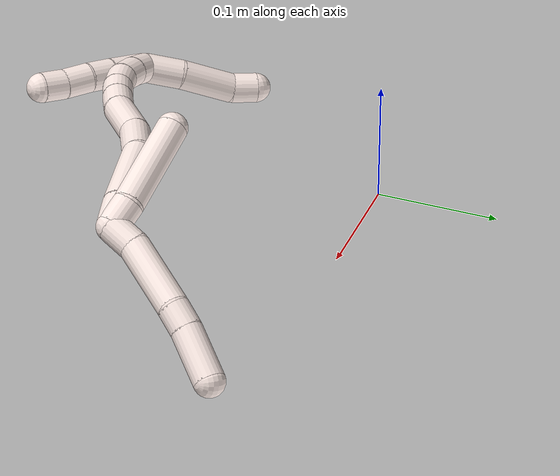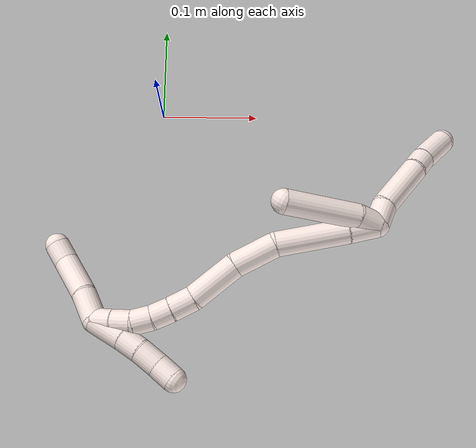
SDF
<sdf version="1.7">
 <world name="default">
  <model name="11">
   <static>0</static>
   <link name="11">
    <collision name="collision-cylinder-e_1_2_8">
     <pose>0.011655 0.002142 0.003449 -0.555804 1.23556 -0.400005</pose>
     <geometry><cylinder><radius>0.0125</radius><length>0.024684</length></cylinder></geometry>
     <surface>
      <friction><ode><mu>1.16</mu><mu2>1.16</mu2><slip1>0</slip1><slip2>0</slip2></ode></friction>
      <contact><ode><kp>1e+06</kp><kd>1</kd><max_vel>0</max_vel><min_depth>0.001</min_depth></ode></contact>
     </surface>
    </collision>
    <visual name="visual-cylinder-e_1_2_8">
     <pose>0.011655 0.002142 0.003449 -0.555804 1.23556 -0.400005</pose>
     <geometry><cylinder><radius>0.0125</radius><length>0.024684</length></cylinder></geometry>
     <material><ambient>1 0.933333 0.909804 1</ambient></material>
    </visual>
    <collision name="collision-cylinder-e_2_8_9">
     <pose>0.052686 0.012528 0.007833 -1.45789 1.29554 -1.18852</pose>
     <geometry><cylinder><radius>0.0125</radius><length>0.06105</length></cylinder></geometry>
     <surface>
      <friction><ode><mu>1.16</mu><mu2>1.16</mu2><slip1>0</slip1><slip2>0</slip2></ode></friction>
      <contact><ode><kp>1e+06</kp><kd>1</kd><max_vel>0</max_vel><min_depth>0.001</min_depth></ode></contact>
     </surface>
    </collision>
    <visual name="visual-cylinder-e_2_8_9">
     <pose>0.052686 0.012528 0.007833 -1.45789 1.29554 -1.18852</pose>
     <geometry><cylinder><radius>0.0125</radius><length>0.06105</length></cylinder></geometry>
     <material><ambient>1 0.933333 0.909804 1</ambient></material>
    </visual>
    <collision name="collision-cylinder-e_3_9_10">
     <pose>0.091323 0.025008 0.009866 -1.31708 1.1293 -0.911459</pose>
     <geometry><cylinder><radius>0.0125</radius><length>0.020485</length></cylinder></geometry>
     <surface>
      <friction><ode><mu>1.16</mu><mu2>1.16</mu2><slip1>0</slip1><slip2>0</slip2></ode></friction>
      <contact><ode><kp>1e+06</kp><kd>1</kd><max_vel>0</max_vel><min_depth>0.001</min_depth></ode></contact>
     </surface>
    </collision>
    <visual name="visual-cylinder-e_3_9_10">
     <pose>0.091323 0.025008 0.009866 -1.31708 1.1293 -0.911459</pose>
     <geometry><cylinder><radius>0.0125</radius><length>0.020485</length></cylinder></geometry>
     <material><ambient>1 0.933333 0.909804 1</ambient></material>
    </visual>
    <collision name="collision-cylinder-e_4_10_6">
     <pose>0.12011 0.039137 0.011055 -1.56169 1.10188 -1.09378</pose>
     <geometry><cylinder><radius>0.0125</radius><length>0.043781</length></cylinder></geometry>
     <surface>
      <friction><ode><mu>1.16</mu><mu2>1.16</mu2><slip1>0</slip1><slip2>0</slip2></ode></friction>
      <contact><ode><kp>1e+06</kp><kd>1</kd><max_vel>0</max_vel><min_depth>0.001</min_depth></ode></contact>
     </surface>
    </collision>
    <visual name="visual-cylinder-e_4_10_6">
     <pose>0.12011 0.039137 0.011055 -1.56169 1.10188 -1.09378</pose>
     <geometry><cylinder><radius>0.0125</radius><length>0.043781</length></cylinder></geometry>
     <material><ambient>1 0.933333 0.909804 1</ambient></material>
    </visual>
    <collision name="collision-cylinder-e_1_2_11">
     <pose>-0.003759 -0.006912 0.008103 0.706188 -0.339288 -0.126087</pose>
     <geometry><cylinder><radius>0.0125</radius><length>0.022589</length></cylinder></geometry>
     <surface>
      <friction><ode><mu>1.16</mu><mu2>1.16</mu2><slip1>0</slip1><slip2>0</slip2></ode></friction>
      <contact><ode><kp>1e+06</kp><kd>1</kd><max_vel>0</max_vel><min_depth>0.001</min_depth></ode></contact>
     </surface>
    </collision>
    <visual name="visual-cylinder-e_1_2_11">
     <pose>-0.003759 -0.006912 0.008103 0.706188 -0.339288 -0.126087</pose>
     <geometry><cylinder><radius>0.0125</radius><length>0.022589</length></cylinder></geometry>
     <material><ambient>1 0.933333 0.909804 1</ambient></material>
    </visual>
    <collision name="collision-cylinder-e_2_11_5">
     <pose>-0.027134 -0.031966 0.04421 0.574899 -0.531479 -0.160585</pose>
     <geometry><cylinder><radius>0.0125</radius><length>0.077411</length></cylinder></geometry>
     <surface>
      <friction><ode><mu>1.16</mu><mu2>1.16</mu2><slip1>0</slip1><slip2>0</slip2></ode></friction>
      <contact><ode><kp>1e+06</kp><kd>1</kd><max_vel>0</max_vel><min_depth>0.001</min_depth></ode></contact>
     </surface>
    </collision>
    <visual name="visual-cylinder-e_2_11_5">
     <pose>-0.027134 -0.031966 0.04421 0.574899 -0.531479 -0.160585</pose>
     <geometry><cylinder><radius>0.0125</radius><length>0.077411</length></cylinder></geometry>
     <material><ambient>1 0.933333 0.909804 1</ambient></material>
    </visual>
    <collision name="collision-cylinder-e_1_2_12">
     <pose>-0.011086 -0.001952 0.009169 0.209789 -0.868818 -0.097616</pose>
     <geometry><cylinder><radius>0.0125</radius><length>0.029037</length></cylinder></geometry>
     <surface>
      <friction><ode><mu>1.16</mu><mu2>1.16</mu2><slip1>0</slip1><slip2>0</slip2></ode></friction>
      <contact><ode><kp>1e+06</kp><kd>1</kd><max_vel>0</max_vel><min_depth>0.001</min_depth></ode></contact>
     </surface>
    </collision>
    <visual name="visual-cylinder-e_1_2_12">
     <pose>-0.011086 -0.001952 0.009169 0.209789 -0.868818 -0.097616</pose>
     <geometry><cylinder><radius>0.0125</radius><length>0.029037</length></cylinder></geometry>
     <material><ambient>1 0.933333 0.909804 1</ambient></material>
    </visual>
    <collision name="collision-cylinder-e_2_12_13">
     <pose>-0.048334 -0.007167 0.04271 0.133053 -0.816408 -0.057614</pose>
     <geometry><cylinder><radius>0.0125</radius><length>0.071807</length></cylinder></geometry>
     <surface>
      <friction><ode><mu>1.16</mu><mu2>1.16</mu2><slip1>0</slip1><slip2>0</slip2></ode></friction>
      <contact><ode><kp>1e+06</kp><kd>1</kd><max_vel>0</max_vel><min_depth>0.001</min_depth></ode></contact>
     </surface>
    </collision>
    <visual name="visual-cylinder-e_2_12_13">
     <pose>-0.048334 -0.007167 0.04271 0.133053 -0.816408 -0.057614</pose>
     <geometry><cylinder><radius>0.0125</radius><length>0.071807</length></cylinder></geometry>
     <material><ambient>1 0.933333 0.909804 1</ambient></material>
    </visual>
    <collision name="collision-cylinder-e_3_13_14">
     <pose>-0.093315 -0.007576 0.07818 -0.251565 -1.02382 0.141858</pose>
     <geometry><cylinder><radius>0.0125</radius><length>0.044067</length></cylinder></geometry>
     <surface>
      <friction><ode><mu>1.16</mu><mu2>1.16</mu2><slip1>0</slip1><slip2>0</slip2></ode></friction>
      <contact><ode><kp>1e+06</kp><kd>1</kd><max_vel>0</max_vel><min_depth>0.001</min_depth></ode></contact>
     </surface>
    </collision>
    <visual name="visual-cylinder-e_3_13_14">
     <pose>-0.093315 -0.007576 0.07818 -0.251565 -1.02382 0.141858</pose>
     <geometry><cylinder><radius>0.0125</radius><length>0.044067</length></cylinder></geometry>
     <material><ambient>1 0.933333 0.909804 1</ambient></material>
    </visual>
    <collision name="collision-cylinder-e_4_14_15">
     <pose>-0.135921 -0.000497 0.097286 -0.485651 -1.20711 0.338269</pose>
     <geometry><cylinder><radius>0.0125</radius><length>0.050905</length></cylinder></geometry>
     <surface>
      <friction><ode><mu>1.16</mu><mu2>1.16</mu2><slip1>0</slip1><slip2>0</slip2></ode></friction>
      <contact><ode><kp>1e+06</kp><kd>1</kd><max_vel>0</max_vel><min_depth>0.001</min_depth></ode></contact>
     </surface>
    </collision>
    <visual name="visual-cylinder-e_4_14_15">
     <pose>-0.135921 -0.000497 0.097286 -0.485651 -1.20711 0.338269</pose>
     <geometry><cylinder><radius>0.0125</radius><length>0.050905</length></cylinder></geometry>
     <material><ambient>1 0.933333 0.909804 1</ambient></material>
    </visual>
    <collision name="collision-cylinder-e_5_15_16">
     <pose>-0.170144 0.004654 0.111158 -0.156333 -1.05346 0.091036</pose>
     <geometry><cylinder><radius>0.0125</radius><length>0.024012</length></cylinder></geometry>
     <surface>
      <friction><ode><mu>1.16</mu><mu2>1.16</mu2><slip1>0</slip1><slip2>0</slip2></ode></friction>
      <contact><ode><kp>1e+06</kp><kd>1</kd><max_vel>0</max_vel><min_depth>0.001</min_depth></ode></contact>
     </surface>
    </collision>
    <visual name="visual-cylinder-e_5_15_16">
     <pose>-0.170144 0.004654 0.111158 -0.156333 -1.05346 0.091036</pose>
     <geometry><cylinder><radius>0.0125</radius><length>0.024012</length></cylinder></geometry>
     <material><ambient>1 0.933333 0.909804 1</ambient></material>
    </visual>
    <collision name="collision-cylinder-e_6_16_17">
     <pose>-0.188966 0.006353 0.1225 -0.140529 -0.98781 0.075751</pose>
     <geometry><cylinder><radius>0.0125</radius><length>0.020093</length></cylinder></geometry>
     <surface>
      <friction><ode><mu>1.16</mu><mu2>1.16</mu2><slip1>0</slip1><slip2>0</slip2></ode></friction>
      <contact><ode><kp>1e+06</kp><kd>1</kd><max_vel>0</max_vel><min_depth>0.001</min_depth></ode></contact>
     </surface>
    </collision>
    <visual name="visual-cylinder-e_6_16_17">
     <pose>-0.188966 0.006353 0.1225 -0.140529 -0.98781 0.075751</pose>
     <geometry><cylinder><radius>0.0125</radius><length>0.020093</length></cylinder></geometry>
     <material><ambient>1 0.933333 0.909804 1</ambient></material>
    </visual>
    <collision name="collision-cylinder-e_7_17_18">
     <pose>-0.204787 0.007466 0.134689 -0.050436 -0.835688 0.022397</pose>
     <geometry><cylinder><radius>0.0125</radius><length>0.020043</length></cylinder></geometry>
     <surface>
      <friction><ode><mu>1.16</mu><mu2>1.16</mu2><slip1>0</slip1><slip2>0</slip2></ode></friction>
      <contact><ode><kp>1e+06</kp><kd>1</kd><max_vel>0</max_vel><min_depth>0.001</min_depth></ode></contact>
     </surface>
    </collision>
    <visual name="visual-cylinder-e_7_17_18">
     <pose>-0.204787 0.007466 0.134689 -0.050436 -0.835688 0.022397</pose>
     <geometry><cylinder><radius>0.0125</radius><length>0.020043</length></cylinder></geometry>
     <material><ambient>1 0.933333 0.909804 1</ambient></material>
    </visual>
    <collision name="collision-cylinder-e_8_18_19">
     <pose>-0.217149 0.008739 0.150073 -0.107321 -0.514359 0.028251</pose>
     <geometry><cylinder><radius>0.0125</radius><length>0.020035</length></cylinder></geometry>
     <surface>
      <friction><ode><mu>1.16</mu><mu2>1.16</mu2><slip1>0</slip1><slip2>0</slip2></ode></friction>
      <contact><ode><kp>1e+06</kp><kd>1</kd><max_vel>0</max_vel><min_depth>0.001</min_depth></ode></contact>
     </surface>
    </collision>
    <visual name="visual-cylinder-e_8_18_19">
     <pose>-0.217149 0.008739 0.150073 -0.107321 -0.514359 0.028251</pose>
     <geometry><cylinder><radius>0.0125</radius><length>0.020035</length></cylinder></geometry>
     <material><ambient>1 0.933333 0.909804 1</ambient></material>
    </visual>
    <collision name="collision-cylinder-e_9_19_1">
     <pose>-0.226419 0.011265 0.167611 -0.177621 -0.44914 0.040674</pose>
     <geometry><cylinder><radius>0.0125</radius><length>0.020001</length></cylinder></geometry>
     <surface>
      <friction><ode><mu>1.16</mu><mu2>1.16</mu2><slip1>0</slip1><slip2>0</slip2></ode></friction>
      <contact><ode><kp>1e+06</kp><kd>1</kd><max_vel>0</max_vel><min_depth>0.001</min_depth></ode></contact>
     </surface>
    </collision>
    <visual name="visual-cylinder-e_9_19_1">
     <pose>-0.226419 0.011265 0.167611 -0.177621 -0.44914 0.040674</pose>
     <geometry><cylinder><radius>0.0125</radius><length>0.020001</length></cylinder></geometry>
     <material><ambient>1 0.933333 0.909804 1</ambient></material>
    </visual>
    <collision name="collision-cylinder-e_1_1_20">
     <pose>-0.229926 0.01312 0.158841 -3.12667 0.04732 -2.53088</pose>
     <geometry><cylinder><radius>0.0125</radius><length>0.035316</length></cylinder></geometry>
     <surface>
      <friction><ode><mu>1.16</mu><mu2>1.16</mu2><slip1>0</slip1><slip2>0</slip2></ode></friction>
      <contact><ode><kp>1e+06</kp><kd>1</kd><max_vel>0</max_vel><min_depth>0.001</min_depth></ode></contact>
     </surface>
    </collision>
    <visual name="visual-cylinder-e_1_1_20">
     <pose>-0.229926 0.01312 0.158841 -3.12667 0.04732 -2.53088</pose>
     <geometry><cylinder><radius>0.0125</radius><length>0.035316</length></cylinder></geometry>
     <material><ambient>1 0.933333 0.909804 1</ambient></material>
    </visual>
    <collision name="collision-cylinder-e_2_20_21">
     <pose>-0.229013 0.01422 0.130506 -3.06356 0.007323 -0.187038</pose>
     <geometry><cylinder><radius>0.0125</radius><length>0.021464</length></cylinder></geometry>
     <surface>
      <friction><ode><mu>1.16</mu><mu2>1.16</mu2><slip1>0</slip1><slip2>0</slip2></ode></friction>
      <contact><ode><kp>1e+06</kp><kd>1</kd><max_vel>0</max_vel><min_depth>0.001</min_depth></ode></contact>
     </surface>
    </collision>
    <visual name="visual-cylinder-e_2_20_21">
     <pose>-0.229013 0.01422 0.130506 -3.06356 0.007323 -0.187038</pose>
     <geometry><cylinder><radius>0.0125</radius><length>0.021464</length></cylinder></geometry>
     <material><ambient>1 0.933333 0.909804 1</ambient></material>
    </visual>
    <collision name="collision-cylinder-e_3_21_22">
     <pose>-0.229557 0.017254 0.10855 -2.94876 -0.054235 0.546849</pose>
     <geometry><cylinder><radius>0.0125</radius><length>0.022972</length></cylinder></geometry>
     <surface>
      <friction><ode><mu>1.16</mu><mu2>1.16</mu2><slip1>0</slip1><slip2>0</slip2></ode></friction>
      <contact><ode><kp>1e+06</kp><kd>1</kd><max_vel>0</max_vel><min_depth>0.001</min_depth></ode></contact>
     </surface>
    </collision>
    <visual name="visual-cylinder-e_3_21_22">
     <pose>-0.229557 0.017254 0.10855 -2.94876 -0.054235 0.546849</pose>
     <geometry><cylinder><radius>0.0125</radius><length>0.022972</length></cylinder></geometry>
     <material><ambient>1 0.933333 0.909804 1</ambient></material>
    </visual>
    <collision name="collision-cylinder-e_4_22_4">
     <pose>-0.231139 0.020517 0.087272 -3.0358 -0.09494 1.46262</pose>
     <geometry><cylinder><radius>0.0125</radius><length>0.020248</length></cylinder></geometry>
     <surface>
      <friction><ode><mu>1.16</mu><mu2>1.16</mu2><slip1>0</slip1><slip2>0</slip2></ode></friction>
      <contact><ode><kp>1e+06</kp><kd>1</kd><max_vel>0</max_vel><min_depth>0.001</min_depth></ode></contact>
     </surface>
    </collision>
    <visual name="visual-cylinder-e_4_22_4">
     <pose>-0.231139 0.020517 0.087272 -3.0358 -0.09494 1.46262</pose>
     <geometry><cylinder><radius>0.0125</radius><length>0.020248</length></cylinder></geometry>
     <material><ambient>1 0.933333 0.909804 1</ambient></material>
    </visual>
    <collision name="collision-cylinder-e_1_1_23">
     <pose>-0.222922 0.013332 0.190458 -0.033983 0.510838 -0.008874</pose>
     <geometry><cylinder><radius>0.0125</radius><length>0.03207</length></cylinder></geometry>
     <surface>
      <friction><ode><mu>1.16</mu><mu2>1.16</mu2><slip1>0</slip1><slip2>0</slip2></ode></friction>
      <contact><ode><kp>1e+06</kp><kd>1</kd><max_vel>0</max_vel><min_depth>0.001</min_depth></ode></contact>
     </surface>
    </collision>
    <visual name="visual-cylinder-e_1_1_23">
     <pose>-0.222922 0.013332 0.190458 -0.033983 0.510838 -0.008874</pose>
     <geometry><cylinder><radius>0.0125</radius><length>0.03207</length></cylinder></geometry>
     <material><ambient>1 0.933333 0.909804 1</ambient></material>
    </visual>
    <collision name="collision-cylinder-e_2_23_24">
     <pose>-0.206243 0.017869 0.225627 -0.189395 0.388823 -0.037399</pose>
     <geometry><cylinder><radius>0.0125</radius><length>0.046632</length></cylinder></geometry>
     <surface>
      <friction><ode><mu>1.16</mu><mu2>1.16</mu2><slip1>0</slip1><slip2>0</slip2></ode></friction>
      <contact><ode><kp>1e+06</kp><kd>1</kd><max_vel>0</max_vel><min_depth>0.001</min_depth></ode></contact>
     </surface>
    </collision>
    <visual name="visual-cylinder-e_2_23_24">
     <pose>-0.206243 0.017869 0.225627 -0.189395 0.388823 -0.037399</pose>
     <geometry><cylinder><radius>0.0125</radius><length>0.046632</length></cylinder></geometry>
     <material><ambient>1 0.933333 0.909804 1</ambient></material>
    </visual>
    <collision name="collision-cylinder-e_3_24_3">
     <pose>-0.193174 0.020402 0.25647 0.157178 0.408453 0.032618</pose>
     <geometry><cylinder><radius>0.0125</radius><length>0.021297</length></cylinder></geometry>
     <surface>
      <friction><ode><mu>1.16</mu><mu2>1.16</mu2><slip1>0</slip1><slip2>0</slip2></ode></friction>
      <contact><ode><kp>1e+06</kp><kd>1</kd><max_vel>0</max_vel><min_depth>0.001</min_depth></ode></contact>
     </surface>
    </collision>
    <visual name="visual-cylinder-e_3_24_3">
     <pose>-0.193174 0.020402 0.25647 0.157178 0.408453 0.032618</pose>
     <geometry><cylinder><radius>0.0125</radius><length>0.021297</length></cylinder></geometry>
     <material><ambient>1 0.933333 0.909804 1</ambient></material>
    </visual>
    <collision name="collision-sphere-3">
     <pose>-0.188945 0.018872 0.266122 0 -0 0</pose>
     <geometry><sphere><radius>0.0125</radius></sphere></geometry>
     <surface>
      <friction><ode><mu>1.16</mu><mu2>1.16</mu2><slip1>0</slip1><slip2>0</slip2></ode></friction>
      <contact><ode><kp>1e+06</kp><kd>1</kd><max_vel>0</max_vel><min_depth>0.001</min_depth></ode></contact>
     </surface>
    </collision>
    <visual name="visual-sphere-3">
     <pose>-0.188945 0.018872 0.266122 0 -0 0</pose>
     <geometry><sphere><radius>0.0125</radius></sphere></geometry>
     <material><ambient>1 0.933333 0.909804 1</ambient></material>
    </visual>
    <collision name="collision-sphere-24">
     <pose>-0.197404 0.021931 0.246817 0 -0 0</pose>
     <geometry><sphere><radius>0.0125</radius></sphere></geometry>
     <surface>
      <friction><ode><mu>1.16</mu><mu2>1.16</mu2><slip1>0</slip1><slip2>0</slip2></ode></friction>
      <contact><ode><kp>1e+06</kp><kd>1</kd><max_vel>0</max_vel><min_depth>0.001</min_depth></ode></contact>
     </surface>
    </collision>
    <visual name="visual-sphere-24">
     <pose>-0.197404 0.021931 0.246817 0 -0 0</pose>
     <geometry><sphere><radius>0.0125</radius></sphere></geometry>
     <material><ambient>1 0.933333 0.909804 1</ambient></material>
    </visual>
    <collision name="collision-sphere-23">
     <pose>-0.215082 0.013808 0.204438 0 -0 0</pose>
     <geometry><sphere><radius>0.0125</radius></sphere></geometry>
     <surface>
      <friction><ode><mu>1.16</mu><mu2>1.16</mu2><slip1>0</slip1><slip2>0</slip2></ode></friction>
      <contact><ode><kp>1e+06</kp><kd>1</kd><max_vel>0</max_vel><min_depth>0.001</min_depth></ode></contact>
     </surface>
    </collision>
    <visual name="visual-sphere-23">
     <pose>-0.215082 0.013808 0.204438 0 -0 0</pose>
     <geometry><sphere><radius>0.0125</radius></sphere></geometry>
     <material><ambient>1 0.933333 0.909804 1</ambient></material>
    </visual>
    <collision name="collision-sphere-4">
     <pose>-0.232099 0.021581 0.07725 0 -0 0</pose>
     <geometry><sphere><radius>0.0125</radius></sphere></geometry>
     <surface>
      <friction><ode><mu>1.16</mu><mu2>1.16</mu2><slip1>0</slip1><slip2>0</slip2></ode></friction>
      <contact><ode><kp>1e+06</kp><kd>1</kd><max_vel>0</max_vel><min_depth>0.001</min_depth></ode></contact>
     </surface>
    </collision>
    <visual name="visual-sphere-4">
     <pose>-0.232099 0.021581 0.07725 0 -0 0</pose>
     <geometry><sphere><radius>0.0125</radius></sphere></geometry>
     <material><ambient>1 0.933333 0.909804 1</ambient></material>
    </visual>
    <collision name="collision-sphere-22">
     <pose>-0.230179 0.019452 0.097294 0 -0 0</pose>
     <geometry><sphere><radius>0.0125</radius></sphere></geometry>
     <surface>
      <friction><ode><mu>1.16</mu><mu2>1.16</mu2><slip1>0</slip1><slip2>0</slip2></ode></friction>
      <contact><ode><kp>1e+06</kp><kd>1</kd><max_vel>0</max_vel><min_depth>0.001</min_depth></ode></contact>
     </surface>
    </collision>
    <visual name="visual-sphere-22">
     <pose>-0.230179 0.019452 0.097294 0 -0 0</pose>
     <geometry><sphere><radius>0.0125</radius></sphere></geometry>
     <material><ambient>1 0.933333 0.909804 1</ambient></material>
    </visual>
    <collision name="collision-sphere-21">
     <pose>-0.228934 0.015056 0.119807 0 -0 0</pose>
     <geometry><sphere><radius>0.0125</radius></sphere></geometry>
     <surface>
      <friction><ode><mu>1.16</mu><mu2>1.16</mu2><slip1>0</slip1><slip2>0</slip2></ode></friction>
      <contact><ode><kp>1e+06</kp><kd>1</kd><max_vel>0</max_vel><min_depth>0.001</min_depth></ode></contact>
     </surface>
    </collision>
    <visual name="visual-sphere-21">
     <pose>-0.228934 0.015056 0.119807 0 -0 0</pose>
     <geometry><sphere><radius>0.0125</radius></sphere></geometry>
     <material><ambient>1 0.933333 0.909804 1</ambient></material>
    </visual>
    <collision name="collision-sphere-20">
     <pose>-0.229091 0.013383 0.141205 0 -0 0</pose>
     <geometry><sphere><radius>0.0125</radius></sphere></geometry>
     <surface>
      <friction><ode><mu>1.16</mu><mu2>1.16</mu2><slip1>0</slip1><slip2>0</slip2></ode></friction>
      <contact><ode><kp>1e+06</kp><kd>1</kd><max_vel>0</max_vel><min_depth>0.001</min_depth></ode></contact>
     </surface>
    </collision>
    <visual name="visual-sphere-20">
     <pose>-0.229091 0.013383 0.141205 0 -0 0</pose>
     <geometry><sphere><radius>0.0125</radius></sphere></geometry>
     <material><ambient>1 0.933333 0.909804 1</ambient></material>
    </visual>
    <collision name="collision-sphere-11">
     <pose>-0.007518 -0.013823 0.016207 0 -0 0</pose>
     <geometry><sphere><radius>0.0125</radius></sphere></geometry>
     <surface>
      <friction><ode><mu>1.16</mu><mu2>1.16</mu2><slip1>0</slip1><slip2>0</slip2></ode></friction>
      <contact><ode><kp>1e+06</kp><kd>1</kd><max_vel>0</max_vel><min_depth>0.001</min_depth></ode></contact>
     </surface>
    </collision>
    <visual name="visual-sphere-11">
     <pose>-0.007518 -0.013823 0.016207 0 -0 0</pose>
     <geometry><sphere><radius>0.0125</radius></sphere></geometry>
     <material><ambient>1 0.933333 0.909804 1</ambient></material>
    </visual>
    <collision name="collision-sphere-6">
     <pose>0.139638 0.049029 0.011145 0 -0 0</pose>
     <geometry><sphere><radius>0.0125</radius></sphere></geometry>
     <surface>
      <friction><ode><mu>1.16</mu><mu2>1.16</mu2><slip1>0</slip1><slip2>0</slip2></ode></friction>
      <contact><ode><kp>1e+06</kp><kd>1</kd><max_vel>0</max_vel><min_depth>0.001</min_depth></ode></contact>
     </surface>
    </collision>
    <visual name="visual-sphere-6">
     <pose>0.139638 0.049029 0.011145 0 -0 0</pose>
     <geometry><sphere><radius>0.0125</radius></sphere></geometry>
     <material><ambient>1 0.933333 0.909804 1</ambient></material>
    </visual>
    <collision name="collision-sphere-10">
     <pose>0.100583 0.029245 0.010965 0 -0 0</pose>
     <geometry><sphere><radius>0.0125</radius></sphere></geometry>
     <surface>
      <friction><ode><mu>1.16</mu><mu2>1.16</mu2><slip1>0</slip1><slip2>0</slip2></ode></friction>
      <contact><ode><kp>1e+06</kp><kd>1</kd><max_vel>0</max_vel><min_depth>0.001</min_depth></ode></contact>
     </surface>
    </collision>
    <visual name="visual-sphere-10">
     <pose>0.100583 0.029245 0.010965 0 -0 0</pose>
     <geometry><sphere><radius>0.0125</radius></sphere></geometry>
     <material><ambient>1 0.933333 0.909804 1</ambient></material>
    </visual>
    <collision name="collision-sphere-9">
     <pose>0.082062 0.020772 0.008768 0 -0 0</pose>
     <geometry><sphere><radius>0.0125</radius></sphere></geometry>
     <surface>
      <friction><ode><mu>1.16</mu><mu2>1.16</mu2><slip1>0</slip1><slip2>0</slip2></ode></friction>
      <contact><ode><kp>1e+06</kp><kd>1</kd><max_vel>0</max_vel><min_depth>0.001</min_depth></ode></contact>
     </surface>
    </collision>
    <visual name="visual-sphere-9">
     <pose>0.082062 0.020772 0.008768 0 -0 0</pose>
     <geometry><sphere><radius>0.0125</radius></sphere></geometry>
     <material><ambient>1 0.933333 0.909804 1</ambient></material>
    </visual>
    <collision name="collision-sphere-2">
     <geometry><sphere><radius>0.0125</radius></sphere></geometry>
     <surface>
      <friction><ode><mu>1.16</mu><mu2>1.16</mu2><slip1>0</slip1><slip2>0</slip2></ode></friction>
      <contact><ode><kp>1e+06</kp><kd>1</kd><max_vel>0</max_vel><min_depth>0.001</min_depth></ode></contact>
     </surface>
    </collision>
    <visual name="visual-sphere-2">
     <geometry><sphere><radius>0.0125</radius></sphere></geometry>
     <material><ambient>1 0.933333 0.909804 1</ambient></material>
    </visual>
    <collision name="collision-sphere-19">
     <pose>-0.222077 0.009674 0.158744 0 -0 0</pose>
     <geometry><sphere><radius>0.0125</radius></sphere></geometry>
     <surface>
      <friction><ode><mu>1.16</mu><mu2>1.16</mu2><slip1>0</slip1><slip2>0</slip2></ode></friction>
      <contact><ode><kp>1e+06</kp><kd>1</kd><max_vel>0</max_vel><min_depth>0.001</min_depth></ode></contact>
     </surface>
    </collision>
    <visual name="visual-sphere-19">
     <pose>-0.222077 0.009674 0.158744 0 -0 0</pose>
     <geometry><sphere><radius>0.0125</radius></sphere></geometry>
     <material><ambient>1 0.933333 0.909804 1</ambient></material>
    </visual>
    <collision name="collision-sphere-8">
     <pose>0.02331 0.004285 0.006898 0 -0 0</pose>
     <geometry><sphere><radius>0.0125</radius></sphere></geometry>
     <surface>
      <friction><ode><mu>1.16</mu><mu2>1.16</mu2><slip1>0</slip1><slip2>0</slip2></ode></friction>
      <contact><ode><kp>1e+06</kp><kd>1</kd><max_vel>0</max_vel><min_depth>0.001</min_depth></ode></contact>
     </surface>
    </collision>
    <visual name="visual-sphere-8">
     <pose>0.02331 0.004285 0.006898 0 -0 0</pose>
     <geometry><sphere><radius>0.0125</radius></sphere></geometry>
     <material><ambient>1 0.933333 0.909804 1</ambient></material>
    </visual>
    <collision name="collision-sphere-5">
     <pose>-0.046751 -0.050109 0.072212 0 -0 0</pose>
     <geometry><sphere><radius>0.0125</radius></sphere></geometry>
     <surface>
      <friction><ode><mu>1.16</mu><mu2>1.16</mu2><slip1>0</slip1><slip2>0</slip2></ode></friction>
      <contact><ode><kp>1e+06</kp><kd>1</kd><max_vel>0</max_vel><min_depth>0.001</min_depth></ode></contact>
     </surface>
    </collision>
    <visual name="visual-sphere-5">
     <pose>-0.046751 -0.050109 0.072212 0 -0 0</pose>
     <geometry><sphere><radius>0.0125</radius></sphere></geometry>
     <material><ambient>1 0.933333 0.909804 1</ambient></material>
    </visual>
    <collision name="collision-sphere-12">
     <pose>-0.022172 -0.003905 0.018339 0 -0 0</pose>
     <geometry><sphere><radius>0.0125</radius></sphere></geometry>
     <surface>
      <friction><ode><mu>1.16</mu><mu2>1.16</mu2><slip1>0</slip1><slip2>0</slip2></ode></friction>
      <contact><ode><kp>1e+06</kp><kd>1</kd><max_vel>0</max_vel><min_depth>0.001</min_depth></ode></contact>
     </surface>
    </collision>
    <visual name="visual-sphere-12">
     <pose>-0.022172 -0.003905 0.018339 0 -0 0</pose>
     <geometry><sphere><radius>0.0125</radius></sphere></geometry>
     <material><ambient>1 0.933333 0.909804 1</ambient></material>
    </visual>
    <collision name="collision-sphere-13">
     <pose>-0.074496 -0.010429 0.067081 0 -0 0</pose>
     <geometry><sphere><radius>0.0125</radius></sphere></geometry>
     <surface>
      <friction><ode><mu>1.16</mu><mu2>1.16</mu2><slip1>0</slip1><slip2>0</slip2></ode></friction>
      <contact><ode><kp>1e+06</kp><kd>1</kd><max_vel>0</max_vel><min_depth>0.001</min_depth></ode></contact>
     </surface>
    </collision>
    <visual name="visual-sphere-13">
     <pose>-0.074496 -0.010429 0.067081 0 -0 0</pose>
     <geometry><sphere><radius>0.0125</radius></sphere></geometry>
     <material><ambient>1 0.933333 0.909804 1</ambient></material>
    </visual>
    <collision name="collision-sphere-14">
     <pose>-0.112134 -0.004723 0.089279 0 -0 0</pose>
     <geometry><sphere><radius>0.0125</radius></sphere></geometry>
     <surface>
      <friction><ode><mu>1.16</mu><mu2>1.16</mu2><slip1>0</slip1><slip2>0</slip2></ode></friction>
      <contact><ode><kp>1e+06</kp><kd>1</kd><max_vel>0</max_vel><min_depth>0.001</min_depth></ode></contact>
     </surface>
    </collision>
    <visual name="visual-sphere-14">
     <pose>-0.112134 -0.004723 0.089279 0 -0 0</pose>
     <geometry><sphere><radius>0.0125</radius></sphere></geometry>
     <material><ambient>1 0.933333 0.909804 1</ambient></material>
    </visual>
    <collision name="collision-sphere-15">
     <pose>-0.159709 0.003729 0.105293 0 -0 0</pose>
     <geometry><sphere><radius>0.0125</radius></sphere></geometry>
     <surface>
      <friction><ode><mu>1.16</mu><mu2>1.16</mu2><slip1>0</slip1><slip2>0</slip2></ode></friction>
      <contact><ode><kp>1e+06</kp><kd>1</kd><max_vel>0</max_vel><min_depth>0.001</min_depth></ode></contact>
     </surface>
    </collision>
    <visual name="visual-sphere-15">
     <pose>-0.159709 0.003729 0.105293 0 -0 0</pose>
     <geometry><sphere><radius>0.0125</radius></sphere></geometry>
     <material><ambient>1 0.933333 0.909804 1</ambient></material>
    </visual>
    <collision name="collision-sphere-16">
     <pose>-0.180579 0.005578 0.117024 0 -0 0</pose>
     <geometry><sphere><radius>0.0125</radius></sphere></geometry>
     <surface>
      <friction><ode><mu>1.16</mu><mu2>1.16</mu2><slip1>0</slip1><slip2>0</slip2></ode></friction>
      <contact><ode><kp>1e+06</kp><kd>1</kd><max_vel>0</max_vel><min_depth>0.001</min_depth></ode></contact>
     </surface>
    </collision>
    <visual name="visual-sphere-16">
     <pose>-0.180579 0.005578 0.117024 0 -0 0</pose>
     <geometry><sphere><radius>0.0125</radius></sphere></geometry>
     <material><ambient>1 0.933333 0.909804 1</ambient></material>
    </visual>
    <collision name="collision-sphere-17">
     <pose>-0.197353 0.007127 0.127976 0 -0 0</pose>
     <geometry><sphere><radius>0.0125</radius></sphere></geometry>
     <surface>
      <friction><ode><mu>1.16</mu><mu2>1.16</mu2><slip1>0</slip1><slip2>0</slip2></ode></friction>
      <contact><ode><kp>1e+06</kp><kd>1</kd><max_vel>0</max_vel><min_depth>0.001</min_depth></ode></contact>
     </surface>
    </collision>
    <visual name="visual-sphere-17">
     <pose>-0.197353 0.007127 0.127976 0 -0 0</pose>
     <geometry><sphere><radius>0.0125</radius></sphere></geometry>
     <material><ambient>1 0.933333 0.909804 1</ambient></material>
    </visual>
    <collision name="collision-sphere-18">
     <pose>-0.21222 0.007805 0.141401 0 -0 0</pose>
     <geometry><sphere><radius>0.0125</radius></sphere></geometry>
     <surface>
      <friction><ode><mu>1.16</mu><mu2>1.16</mu2><slip1>0</slip1><slip2>0</slip2></ode></friction>
      <contact><ode><kp>1e+06</kp><kd>1</kd><max_vel>0</max_vel><min_depth>0.001</min_depth></ode></contact>
     </surface>
    </collision>
    <visual name="visual-sphere-18">
     <pose>-0.21222 0.007805 0.141401 0 -0 0</pose>
     <geometry><sphere><radius>0.0125</radius></sphere></geometry>
     <material><ambient>1 0.933333 0.909804 1</ambient></material>
    </visual>
    <collision name="collision-sphere-1">
     <pose>-0.230762 0.012857 0.176478 0 -0 0</pose>
     <geometry><sphere><radius>0.0125</radius></sphere></geometry>
     <surface>
      <friction><ode><mu>1.16</mu><mu2>1.16</mu2><slip1>0</slip1><slip2>0</slip2></ode></friction>
      <contact><ode><kp>1e+06</kp><kd>1</kd><max_vel>0</max_vel><min_depth>0.001</min_depth></ode></contact>
     </surface>
    </collision>
    <visual name="visual-sphere-1">
     <pose>-0.230762 0.012857 0.176478 0 -0 0</pose>
     <geometry><sphere><radius>0.0125</radius></sphere></geometry>
     <material><ambient>1 0.933333 0.909804 1</ambient></material>
    </visual>
    <inertial>
     <pose>-0.094816 0.00473 0.087384 0 -0 0</pose>
     <mass>0.75</mass>
     <inertia><ixx>7.2e-05</ixx><ixy>0</ixy><ixz>0</ixz><iyy>0.000137</iyy><iyz>0</iyz><izz>6.2e-05</izz></inertia>
    </inertial>
   </link>
   <pose>0.218585 -0.138281 0.071972 -1.78573 0.078991 0.949227</pose>
  </model>
 </world>
</sdf>
